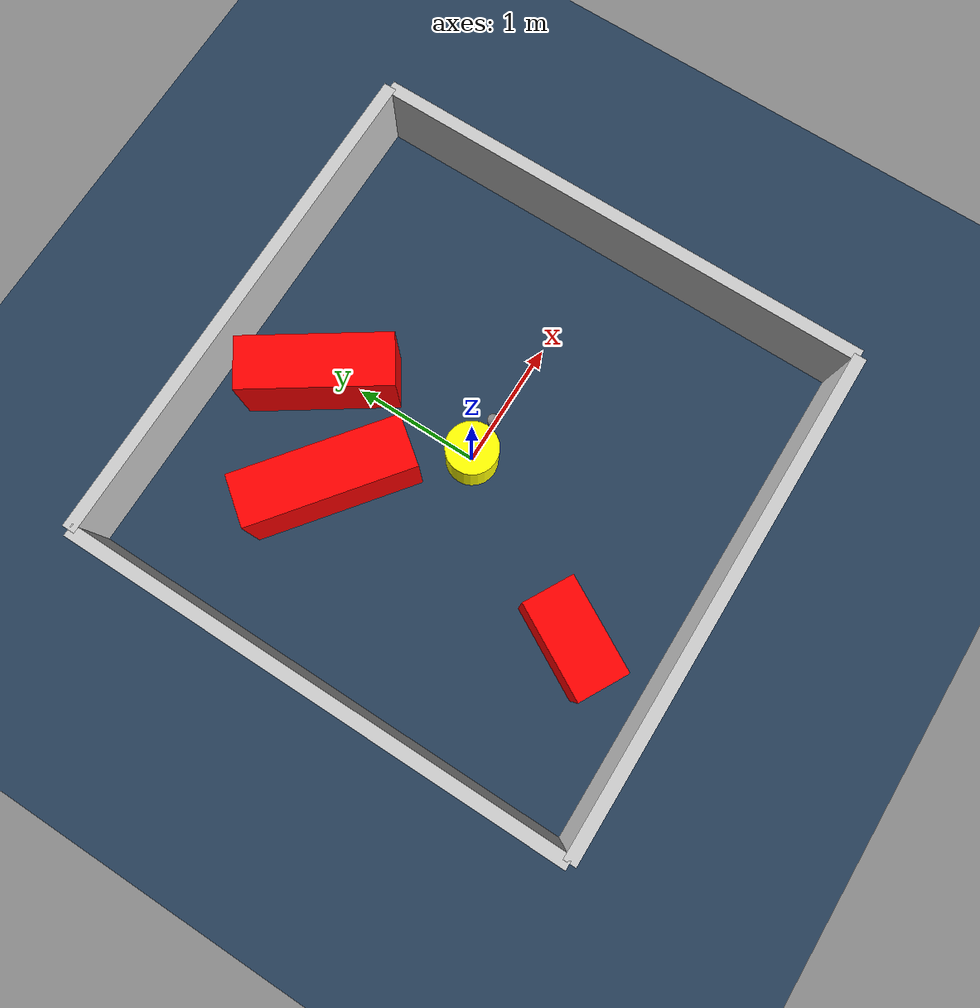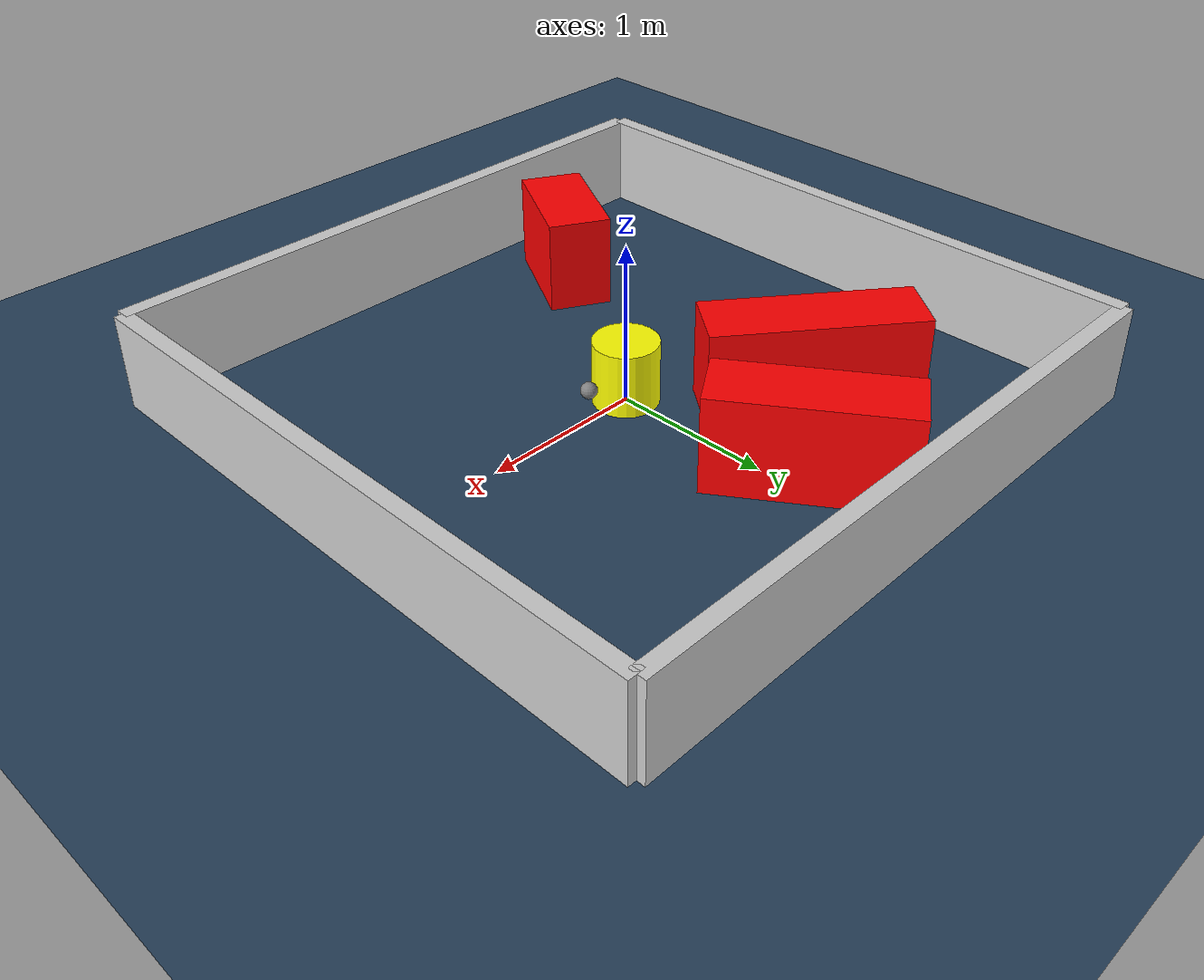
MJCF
<?xml version="1.0" ?>
<mujoco model="generated_environment">
  <option timestep="0.01" integrator="RK4" cone="elliptic"/>
  <default>
    <geom density="1"/>
  </default>
  <asset>
    <texture builtin="gradient" height="3072" rgb1="0.3 0.5 0.7" rgb2="0 0 0" type="skybox" width="512"/>
    <texture builtin="checker" height="300" mark="edge" markrgb="0.8 0.8 0.8" name="groundplane" rgb1="0.2 0.3 0.4" rgb2="0.1 0.2 0.3" type="2d" width="300"/>
    <material name="groundplane" reflectance="0.2" texrepeat="5 5" texture="groundplane" texuniform="true"/>
    <material name="robot" rgba="0.0 1.0 0.0 1"/>
  </asset>
  <worldbody>
    <light dir="0 0 -1" directional="true" pos="0 0 1.5"/>
    <geom condim="4" friction="1.0 0.005 0.001" material="groundplane" name="floor" size="0 0 0.05" type="plane"/>
    <body name="walls">
      <geom name="wall_1" condim="4" pos="-2.0 0.0 0.3" rgba="0.800000011920929 0.800000011920929 0.800000011920929 1.0" size="0.05 2.0 0.3" type="box"/>
      <geom name="wall_2" condim="4" pos="2.0 0.0 0.3" rgba="0.800000011920929 0.800000011920929 0.800000011920929 1.0" size="0.05 2.0 0.3" type="box"/>
      <geom name="wall_3" condim="4" pos="0.0 -2.0 0.3" rgba="0.800000011920929 0.800000011920929 0.800000011920929 1.0" size="2.0 0.05 0.3" type="box"/>
      <geom name="wall_4" condim="4" pos="0.0 2.0 0.3" rgba="0.800000011920929 0.800000011920929 0.800000011920929 1.0" size="2.0 0.05 0.3" type="box"/>
    </body>
    <body name="robot">
      <joint name="joint_x" type="slide" pos="0 0 0" axis="1 0 0"/>
      <joint name="joint_y" type="slide" pos="0 0 0" axis="0 1 0"/>
      <geom name="robot" type="sphere" pos="0.3 0.0 0.2" size="0.05" mass="5." friction="1.0 0.005 0.0001" condim="4" rgba="0.5 0.5 0.5 1.0"/>
      <site name="sensor_ball"/>
    </body>
    <body name="obstacle_movable_1">
      <geom name="obstacle_movable_1" condim="4" pos="0.0 0.0 0.2" euler="0 0 0.0" friction="1.0 0.005 0.001" rgba="1.0 1.0 0.0 1.0" size="0.2 0.2 0.0" type="cylinder" mass="0.1"/>
      <joint type="free"/>
    </body>
    <body name="obstacle_2_static">
      <geom name="obstacle_2_static" condim="4" pos="-0.10226289107697739 1.2645941018534594 0.3" euler="0 0 123.8711376831167" friction="1.0 0.005 0.001" rgba="1 0 0 1" size="0.5764486368179055 0.2 0.3" type="box"/>
    </body>
    <body name="obstacle_3_static">
      <geom name="obstacle_3_static" condim="4" pos="-0.7675757462944968 -1.303964864756002 0.3" euler="0 0 241.17109004526347" friction="1.0 0.005 0.001" rgba="1 0 0 1" size="0.37468657374344033 0.2 0.3" type="box"/>
    </body>
    <body name="obstacle_4_static">
      <geom name="obstacle_4_static" condim="4" pos="-0.7312581607025908 0.7694013042005541 0.3" euler="0 0 142.21030049155289" friction="1.0 0.005 0.001" rgba="1 0 0 1" size="0.6416538240931757 0.2 0.3" type="box"/>
    </body>
  </worldbody>
  <actuator>
    <motor name="actuator_x" joint="joint_x" gear="1" ctrlrange="-1 1"/>
    <motor name="actuator_y" joint="joint_y" gear="1" ctrlrange="-1 1"/>
  </actuator>
</mujoco>
